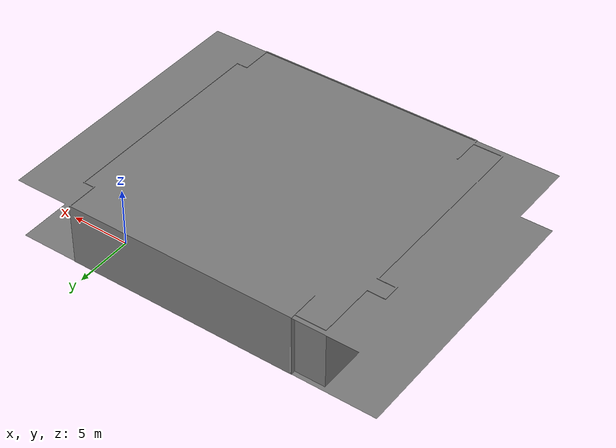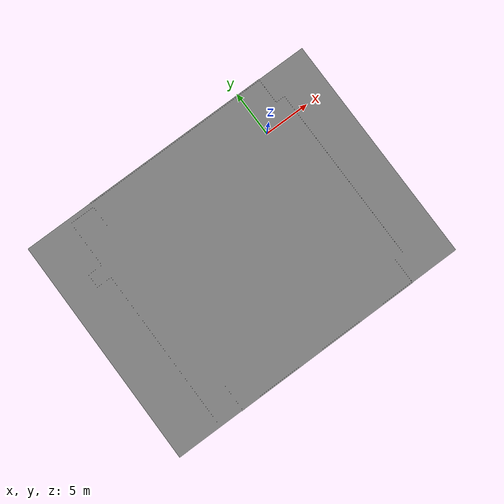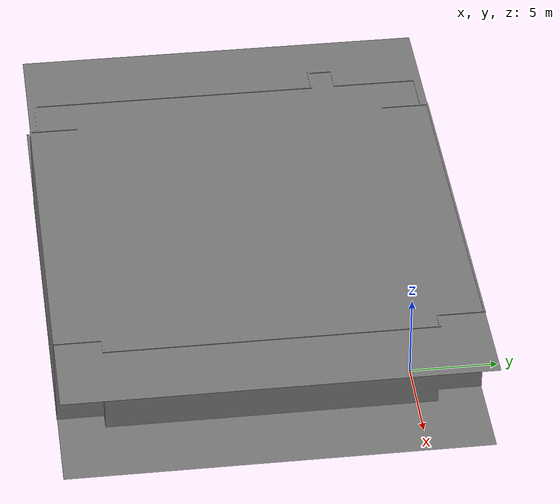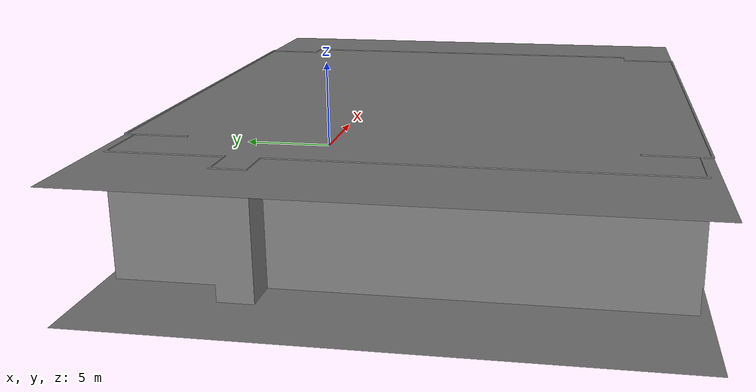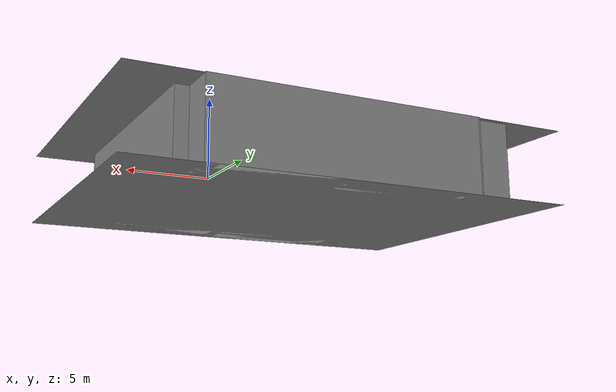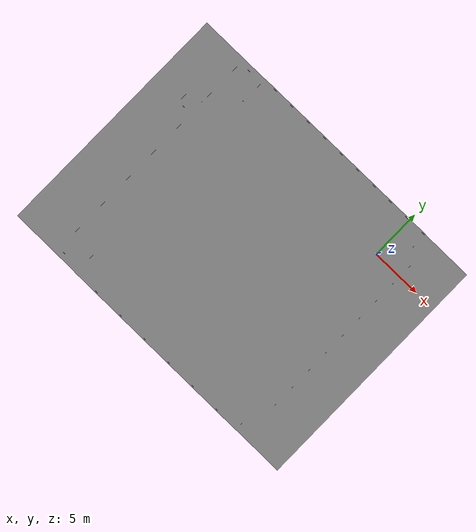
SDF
<?xml version="1.0"?>
<sdf version="1.5">
    <model name="quantico">
        <pose>0 0 0 0 0 0</pose>
        <static>true</static>
        <link name="base_link">
            <inertial>
                <mass>1.0</mass>
                <inertia>
                    <ixx>1.0</ixx>
                    <ixy>0.0</ixy>
                    <ixz>0.0</ixz>
                    <iyy>1.0</iyy>
                    <iyz>0.0</iyz>
                    <izz>1.0</izz>
                </inertia>
            </inertial>
            <collision name="collision">
                <geometry>
                    <mesh>
                        <uri>file://quantico/meshes/quantico.dae</uri>
                    </mesh>
                </geometry>
            </collision>
            <visual name="visual">
                <geometry>
                    <mesh>
                        <uri>file://quantico/meshes/quantico.dae</uri>
                    </mesh>
                </geometry>
            </visual>
        </link>
    </model>
</sdf>
